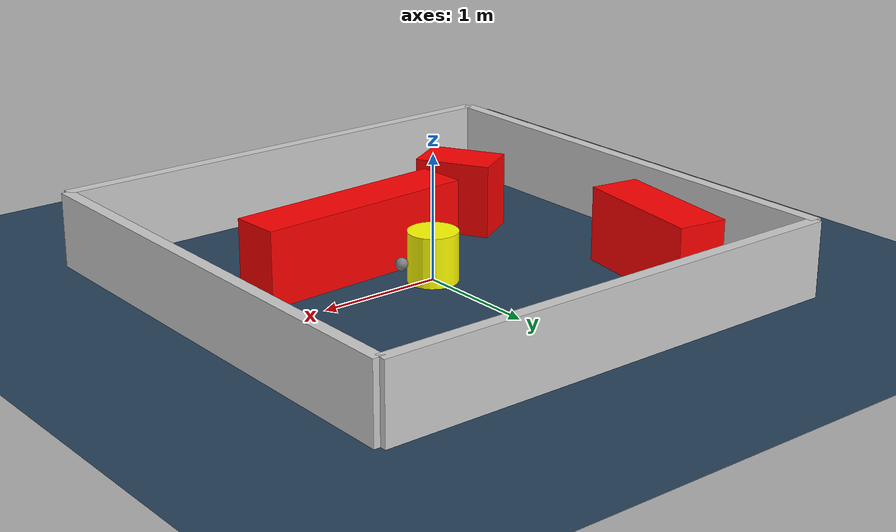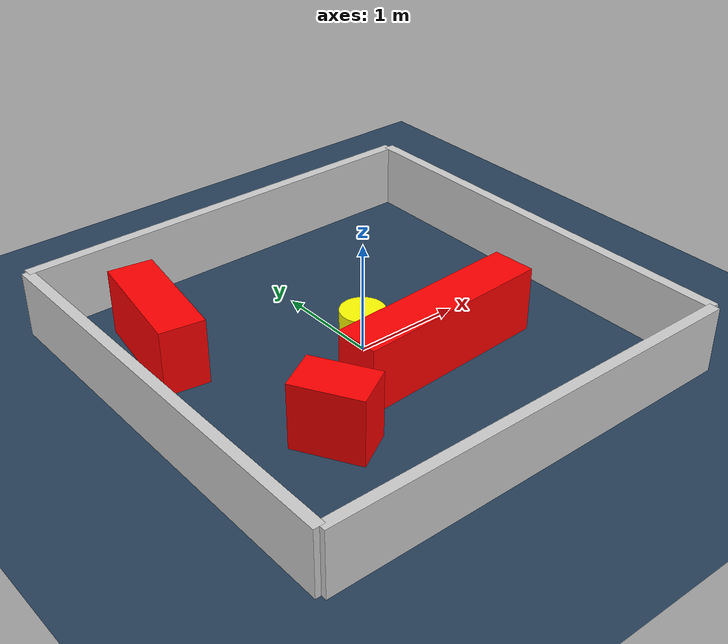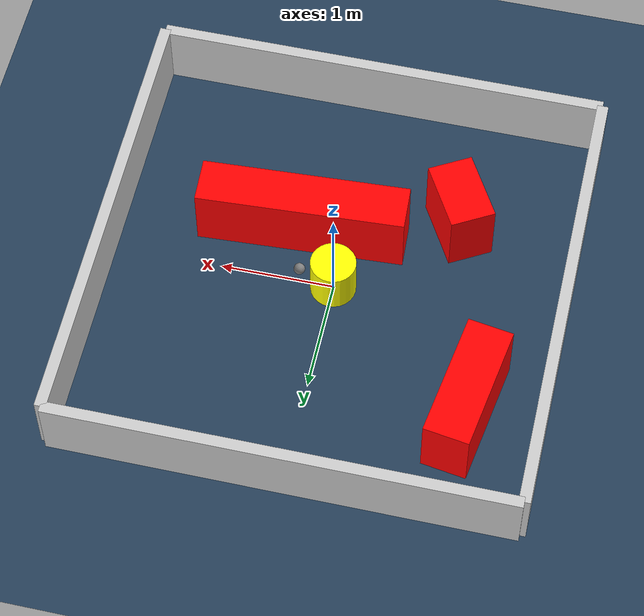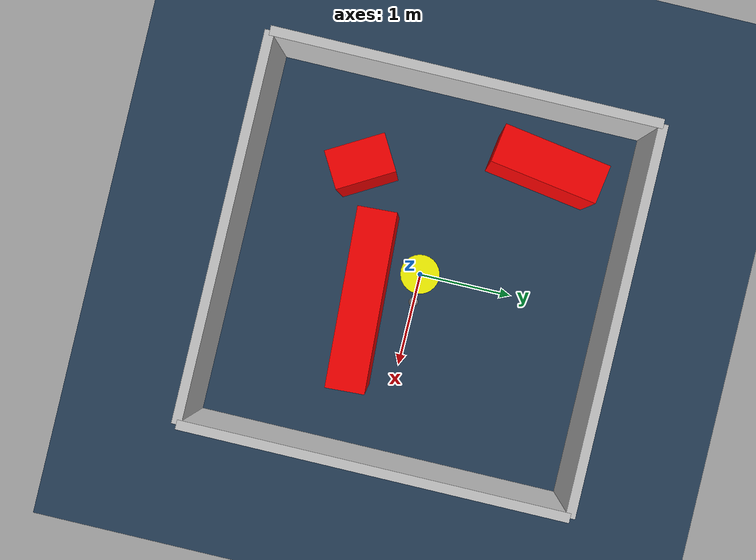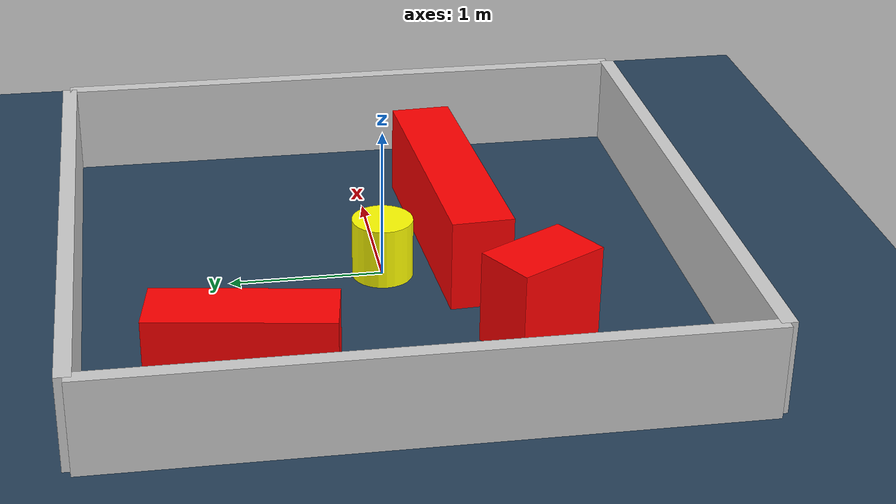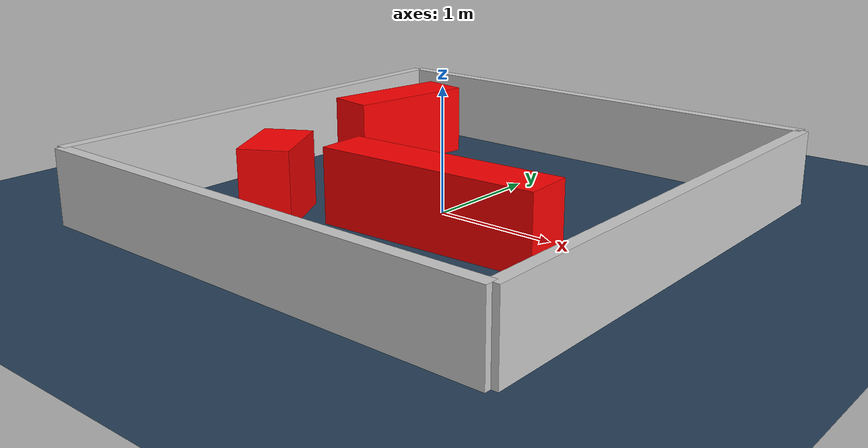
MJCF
<?xml version="1.0" ?>
<mujoco model="generated_environment">
  <option timestep="0.01" integrator="RK4" cone="elliptic"/>
  <default>
    <geom density="1"/>
  </default>
  <asset>
    <texture builtin="gradient" height="3072" rgb1="0.3 0.5 0.7" rgb2="0 0 0" type="skybox" width="512"/>
    <texture builtin="checker" height="300" mark="edge" markrgb="0.8 0.8 0.8" name="groundplane" rgb1="0.2 0.3 0.4" rgb2="0.1 0.2 0.3" type="2d" width="300"/>
    <material name="groundplane" reflectance="0.2" texrepeat="5 5" texture="groundplane" texuniform="true"/>
    <material name="robot" rgba="0.0 1.0 0.0 1"/>
  </asset>
  <worldbody>
    <light dir="0 0 -1" directional="true" pos="0 0 1.5"/>
    <geom condim="4" friction="1.0 0.005 0.001" material="groundplane" name="floor" size="0 0 0.05" type="plane"/>
    <body name="walls">
      <geom name="wall_1" condim="4" pos="-2.0 0.0 0.3" rgba="0.800000011920929 0.800000011920929 0.800000011920929 1.0" size="0.05 2.0 0.3" type="box"/>
      <geom name="wall_2" condim="4" pos="2.0 0.0 0.3" rgba="0.800000011920929 0.800000011920929 0.800000011920929 1.0" size="0.05 2.0 0.3" type="box"/>
      <geom name="wall_3" condim="4" pos="0.0 -2.0 0.3" rgba="0.800000011920929 0.800000011920929 0.800000011920929 1.0" size="2.0 0.05 0.3" type="box"/>
      <geom name="wall_4" condim="4" pos="0.0 2.0 0.3" rgba="0.800000011920929 0.800000011920929 0.800000011920929 1.0" size="2.0 0.05 0.3" type="box"/>
    </body>
    <body name="robot">
      <joint name="joint_x" type="slide" pos="0 0 0" axis="1 0 0"/>
      <joint name="joint_y" type="slide" pos="0 0 0" axis="0 1 0"/>
      <geom name="robot" type="sphere" pos="0.3 0.0 0.2" size="0.05" mass="5." friction="1.0 0.005 0.0001" condim="4" rgba="0.5 0.5 0.5 1.0"/>
      <site name="sensor_ball"/>
    </body>
    <body name="obstacle_movable_1">
      <geom name="obstacle_movable_1" condim="4" pos="0.0 0.0 0.2" euler="0 0 0.0" friction="1.0 0.005 0.001" rgba="1.0 1.0 0.0 1.0" size="0.2 0.2 0.0" type="cylinder" mass="0.1"/>
      <joint type="free"/>
    </body>
    <body name="obstacle_2_static">
      <geom name="obstacle_2_static" condim="4" pos="-1.3618010078967162 1.0047265202643862 0.3" euler="0 0 261.2330017573662" friction="1.0 0.005 0.001" rgba="1 0 0 1" size="0.5568010302723432 0.2 0.3" type="box"/>
    </body>
    <body name="obstacle_3_static">
      <geom name="obstacle_3_static" condim="4" pos="0.38316040108177796 -0.5080575289584863 0.3" euler="0 0 183.08373218142466" friction="1.0 0.005 0.001" rgba="1 0 0 1" size="0.9134493968974808 0.2 0.3" type="box"/>
    </body>
    <body name="obstacle_4_static">
      <geom name="obstacle_4_static" condim="4" pos="-0.9496861206418726 -0.8337927277664795 0.3" euler="0 0 119.96741103206091" friction="1.0 0.005 0.001" rgba="1 0 0 1" size="0.31173265007158846 0.2 0.3" type="box"/>
    </body>
  </worldbody>
  <actuator>
    <motor name="actuator_x" joint="joint_x" gear="1" ctrlrange="-1 1"/>
    <motor name="actuator_y" joint="joint_y" gear="1" ctrlrange="-1 1"/>
  </actuator>
</mujoco>
